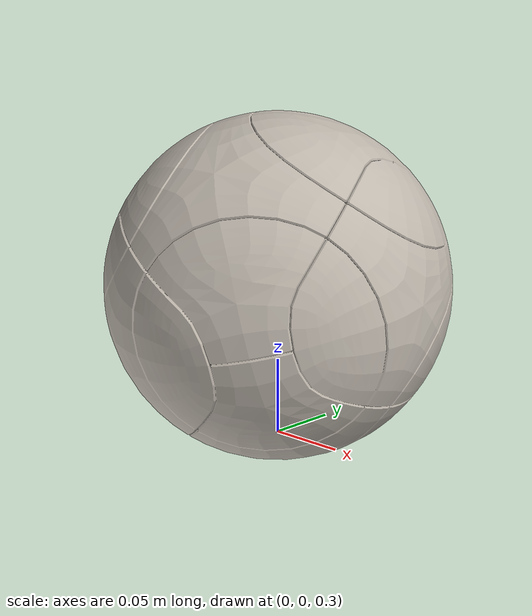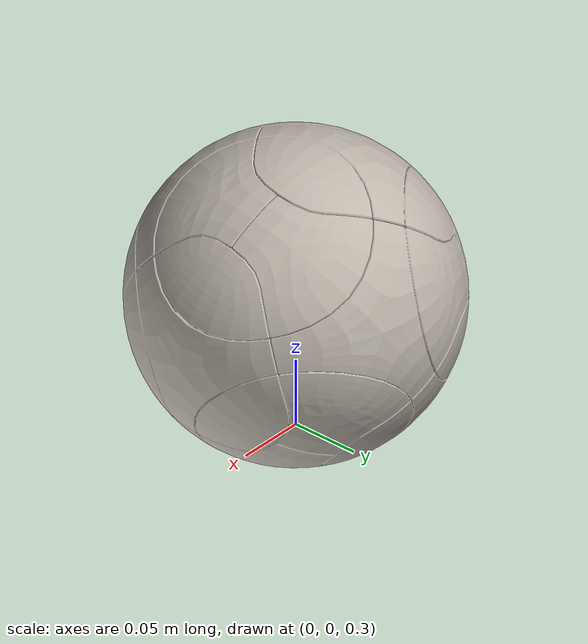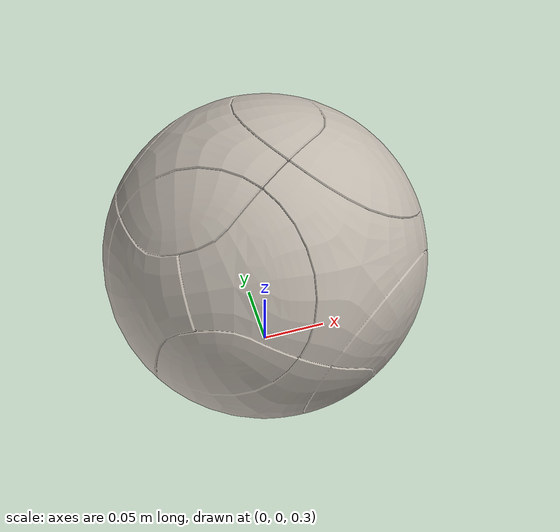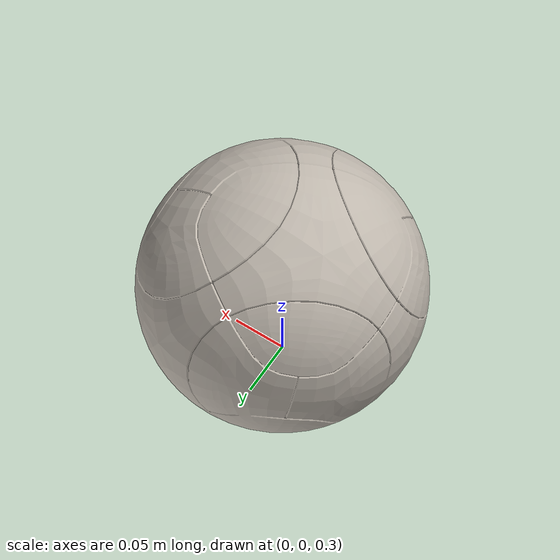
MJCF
<mujoco model="ball">
    <asset>
        <!-- Ball textures and materials -->
        <texture name="ball_diffuse" file="../meshes/ball/Cafusa_Diffuse.png" type="2d"/>
        <material name="ball_mat" texture="ball_diffuse" texrepeat="1 1" rgba="1 1 1 1"/>
        <mesh name="ball_mesh" file="../meshes/ball/ball.obj"/>
    </asset>
    <worldbody>
        <body name="ball" pos="0 0 0.4">
            <freejoint/>

            <inertial mass="0.425" diaginertia="0.003585938 0.003585938 0.003585938" pos="0 0 0"/>
            <geom name="ball_geom" type="mesh" mesh="ball_mesh" material="ball_mat" condim="6" friction="0.8 0.005 0.0005"/>

            <!-- friction: [sliding_friction, torsional_friction, rolling_friction] -->
            <!-- sliding_friction: acting along both axes of the tangent plane -->
            <!-- torsional_friction: acting around the contact normal -->
            <!-- rolling_friction: acting around both axes of the tangent plane -->

            <!-- Size 5 ball (dimensions.com): -->
            <!-- Circumference: 68-70 cm -->
            <!-- Diamater: 22-23 cm -->
            <!-- Mass: 400-450 g -->
            <!-- Pressure: 58.6-107.6 kPa -->

            <!-- Inertia: not sure which one is better -->
            <!-- Spherical shell: (2/5)*m*r^2 = 0.002151562 -->
            <!-- Thin spherical shell: (2/3)*m*r^2 = 0.003585938 -->
        </body>
    </worldbody>
</mujoco>
